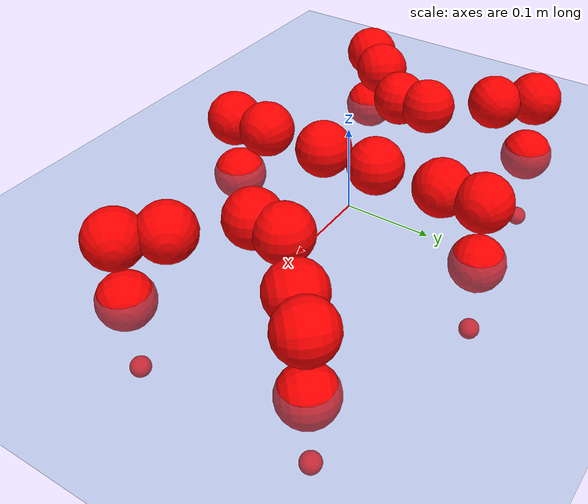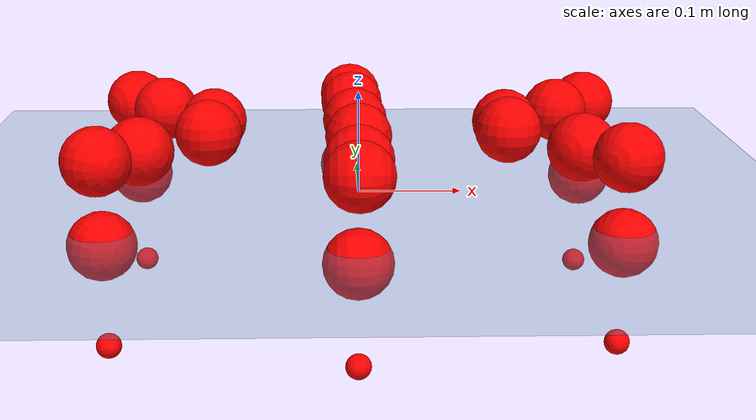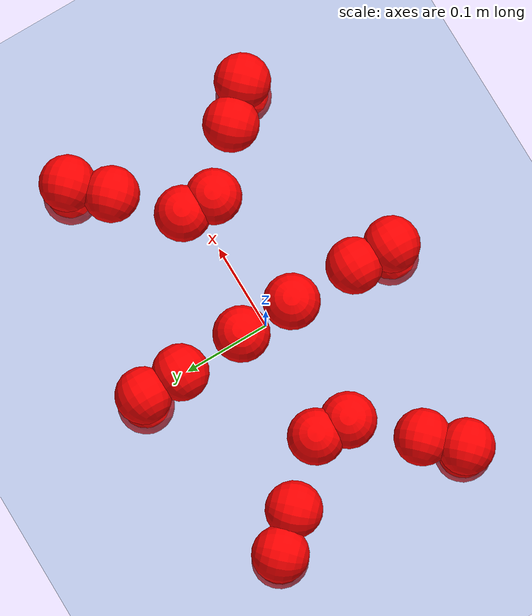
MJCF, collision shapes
<mujoco model="Golem">
  <compiler angle="radian" assetdir="assets" balanceinertia="true" inertiafromgeom="false"/>

  <option timestep="0.005" density="1.2" viscosity="2e-05"/>

  <size nkey="1"/>

  <visual>
    <quality shadowsize="8192"/>
    <map shadowclip="0.5"/>
  </visual>

  <default>
    <default class="/">
      <joint armature="0.01" damping="0.01" frictionloss="0.01"/>
      <geom contype="0" conaffinity="0" group="1" solref="-1000 -80"/>
      <site size="0.01 0.005 0.005" group="5"/>
      <general forcelimited="true" biastype="affine" gainprm="25" biasprm="0 -25 -0.5"/>
      <default class="visual">
        <geom type="mesh" group="2"/>
      </default>
      <default class="collision">
        <geom group="3"/>
      </default>
      <default class="foot">
        <geom size="0.01 0 0" condim="6" group="4" priority="1" solimp="0.015 1 0.01"/>
      </default>
      <default class="reward_collision_sphere">
        <geom group="5" rgba="1 0 0 1"/>
      </default>
    </default>
  </default>

  <asset>
    <texture type="skybox" colorspace="auto" name="//unnamed_texture_0" builtin="gradient" rgb1="0.95 0.95 0.95" rgb2="0.95 0.95 0.95" width="100" height="600"/>
    <texture type="2d" colorspace="auto" name="texplane" builtin="checker" rgb1="0.345 0.575 0.748" rgb2="0.345 0.575 0.748" markrgb="1 1 1" width="512" height="512"/>
    <material name="MatPlane" class="/" texture="texplane" texuniform="true" texrepeat="2 2" specular="0.9"/>
    <mesh name="body" class="/" file="body.stl" scale="0.001 0.001 0.001"/>
    <mesh name="coxa" class="/" file="coxa.stl" scale="0.001 0.001 0.001"/>
    <mesh name="femur" class="/" file="femur.stl" scale="0.001 0.001 0.001"/>
    <mesh name="tibia" class="/" file="tibia.stl" scale="0.001 0.001 0.001"/>
    <mesh name="tarsus" class="/" file="tarsus.stl" scale="0.001 0.001 0.001"/>
  </asset>

  <worldbody>
    <geom name="floor" class="/" size="100 100 0.125" type="plane" group="0" material="MatPlane"/>
    <light name="toplight_shadow" class="/" pos="0 0 5" dir="0.0990148 0.0990148 -0.990148" type="directional" ambient="0.04 0.04 0.04" diffuse="0.55 0.55 0.55" specular="0.12 0.12 0.12"/>
    <light name="toplight_fill" class="/" pos="0 0 5" dir="0.0990148 0.0990148 -0.990148" type="directional" castshadow="false" ambient="0.04 0.04 0.04" diffuse="0.3 0.3 0.3" specular="0.08 0.08 0.08"/>
    <body name="trunk" pos="0.000115658 -6.80369e-05 -0.000188741" quat="1 -0.000788379 -0.000218815 0.000245222">
      <inertial pos="-0.000333855 -0.000277959 -0.00364227" quat="1 0.000265197 -0.000270387 0.000427131" mass="1.86624" diaginertia="0.00616719 0.000187388 0.0107525"/>
      <joint name="//unnamed_joint_0" type="free"/>
      <geom name="//unnamed_geom_1" class="/" pos="0 0 0.0649855" quat="1 0 0 0" type="mesh" rgba="0.9 0.9 0.9 1" mesh="body"/>
      <site name="imu" class="/" pos="0.125175 0.00341057 0.101778" size="0.00791487"/>
      <camera name="track" class="/" pos="0 -0.902434 0" quat="0.707107 0.707107 0 0" mode="trackcom"/>
      <camera name="ego_camera" class="/" pos="0.11802 0 0.10154" quat="-0.5 -0.5 0.5 0.5"/>
      <body name="coxa_RR" pos="-0.162377 -0.0376837 0.0652978" quat="0.382475 0.000853256 -0.000160698 -0.923965">
        <inertial pos="-0.000368452 0.00026573 0.00102379" quat="0.999998 -2.28453e-07 -0.0019502 -0.000107329" mass="0.0995874" diaginertia="0.00619345 0.000187279 0.0108868"/>
        <joint name="coxa_joint_RR" class="/" pos="0 0 0" axis="-0.00170131 -0.00508083 -0.999986" range="-3.14407 3.11454" armature="0.00791755" damping="0.00544154" frictionloss="0.00766211"/>
        <geom name="//unnamed_geom_2" class="/" type="mesh" rgba="0.2 0.2 0.2 1" mesh="coxa"/>
        <geom name="//unnamed_geom_3" class="reward_collision_sphere" size="0.0316595" pos="-0.0272354 0 0"/>
        <body name="femur_RR" pos="0.0552683 0.00185279 -0.00128433" quat="0.500019 -0.500024 0.500012 0.499945">
          <inertial pos="-7.82284e-05 0.000141385 2.239e-05" quat="0.999999 -0.000292048 0.000963336 0.000604994" mass="0.0992899" diaginertia="0.00610776 0.000185476 0.0109052"/>
          <joint name="femur_joint_RR" class="/" pos="0 0 0" axis="-0.00304648 -0.0010164 -0.999995" range="-3.11696 3.13415" armature="0.00761815" damping="0.00136135" frictionloss="0.00816712"/>
          <geom name="//unnamed_geom_4" class="/" type="mesh" rgba="0.9 0.9 0.9 1" mesh="femur"/>
          <geom name="//unnamed_geom_5" class="reward_collision_sphere" size="0.0316595"/>
          <body name="tibia_RR" pos="-0.000606885 -0.0483373 0.00159783" quat="7.71997e-05 1 -4.37266e-05 4.57099e-05">
            <inertial pos="0.000360388 -0.000179454 0.00018683" quat="0.999999 -0.000366909 0.00144489 0.00010019" mass="0.099818" diaginertia="0.00622795 0.000186797 0.0107147"/>
            <joint name="tibia_joint_RR" class="/" pos="0 0 0" axis="0.000327868 -0.00514533 0.999987" range="-3.11362 3.13499" armature="0.00776754" damping="0" frictionloss="0.00774611"/>
            <geom name="//unnamed_geom_6" class="/" type="mesh" rgba="0.2 0.2 0.2 1" mesh="tibia"/>
            <geom name="//unnamed_geom_7" class="reward_collision_sphere" size="0.0316595"/>
            <body name="tarsus_RR" pos="0.0783551 0.00010342 -0.00120754" quat="1 0.000312176 -9.14548e-05 -0.000211997">
              <inertial pos="0.0556567 0.000434502 0.000105833" quat="0.499017 0.500116 0.501191 0.499673" mass="0.097767" diaginertia="0.00604501 0.000186702 0.0106112"/>
              <joint name="tarsus_joint_RR" class="/" pos="0 0 0" axis="-0.000179251 3.41448e-06 1" range="-3.11954 3.1295" armature="0.00809712" damping="0" frictionloss="0.00802006"/>
              <geom name="//unnamed_geom_8" class="/" type="mesh" rgba="0.9 0.9 0.9 1" mesh="tarsus"/>
              <geom name="foot_1" class="foot" size="0.00755947" pos="0.101679 0 0" quat="0 -0.707107 0 0.707107"/>
              <geom name="//unnamed_geom_10" class="reward_collision_sphere" size="0.0316595"/>
              <geom name="//unnamed_geom_11" class="reward_collision_sphere" size="0.0118723" pos="0.0975935 0 0"/>
              <site name="foot_1" class="foot" pos="0.101679 0 0" quat="0 -0.707107 0 0.707107" size="0.00791487"/>
            </body>
          </body>
        </body>
      </body>
      <body name="coxa_RM" pos="-0.000340545 -0.0601727 0.0648006" quat="0.70683 0.000271928 0.000260786 -0.707383">
        <inertial pos="-0.000545664 -0.000817278 0.000180635" quat="0.999999 -0.00145435 0.000160697 0.000297386" mass="0.0986991" diaginertia="0.00609866 0.00018838 0.0108997"/>
        <joint name="coxa_joint_RM" class="/" pos="0 0 0" axis="0.00325443 0.00548247 -0.99998" range="-3.14016 3.14856" armature="0.00851856" damping="0.00579643" frictionloss="0.00795509"/>
        <geom name="//unnamed_geom_12" class="/" type="mesh" rgba="0.2 0.2 0.2 1" mesh="coxa"/>
        <geom name="//unnamed_geom_13" class="reward_collision_sphere" size="0.0316595" pos="-0.0272354 0 0"/>
        <body name="femur_RM" pos="0.0516754 -0.000816064 -0.000794878" quat="0.49998 -0.500014 0.500016 0.49999">
          <inertial pos="-0.00046557 -0.000272291 0.000136921" quat="1 0.000432771 0.000730407 5.48409e-05" mass="0.0980547" diaginertia="0.00606226 0.000189437 0.0109328"/>
          <joint name="femur_joint_RM" class="/" pos="0 0 0" axis="-0.00309771 -0.00123176 -0.999994" range="-3.121 3.14424" armature="0.00779683" damping="0.000744682" frictionloss="0.00779979"/>
          <geom name="//unnamed_geom_14" class="/" type="mesh" rgba="0.9 0.9 0.9 1" mesh="femur"/>
          <geom name="//unnamed_geom_15" class="reward_collision_sphere" size="0.0316595"/>
          <body name="tibia_RM" pos="0.00121711 -0.0473814 -0.000561067" quat="-0.000181251 1 0.000319191 -3.86816e-06">
            <inertial pos="-0.000786874 -0.000732487 -0.000819314" quat="0.999994 -0.00180244 -0.00283942 0.000368566" mass="0.0987451" diaginertia="0.00622379 0.000186376 0.0108258"/>
            <joint name="tibia_joint_RM" class="/" pos="0 0 0" axis="-0.00150182 -0.000994197 0.999998" range="-3.13451 3.15706" armature="0.00829822" damping="0.000533279" frictionloss="0.00853743"/>
            <geom name="//unnamed_geom_16" class="/" type="mesh" rgba="0.2 0.2 0.2 1" mesh="tibia"/>
            <geom name="//unnamed_geom_17" class="reward_collision_sphere" size="0.0316595"/>
            <body name="tarsus_RM" pos="0.0787019 0.000886422 0.00133262" quat="1 2.49773e-05 -4.9234e-05 2.58258e-05">
              <inertial pos="0.0542331 0.00143789 0.000174837" quat="0.500686 0.500442 0.499015 0.499855" mass="0.0994291" diaginertia="0.0061002 0.000184935 0.010853"/>
              <joint name="tarsus_joint_RM" class="/" pos="0 0 0" axis="0.000338414 -0.000684229 1" range="-3.11296 3.1195" armature="0.00856586" damping="0.000704231" frictionloss="0.0078942"/>
              <geom name="//unnamed_geom_18" class="/" type="mesh" rgba="0.9 0.9 0.9 1" mesh="tarsus"/>
              <geom name="foot_2" class="foot" size="0.00830034" pos="0.101679 0 0" quat="0 -0.707107 0 0.707107"/>
              <geom name="//unnamed_geom_20" class="reward_collision_sphere" size="0.0316595"/>
              <geom name="//unnamed_geom_21" class="reward_collision_sphere" size="0.0118723" pos="0.0975935 0 0"/>
              <site name="foot_2" class="foot" pos="0.101679 0 0" quat="0 -0.707107 0 0.707107" size="0.00791487"/>
            </body>
          </body>
        </body>
      </body>
      <body name="coxa_RF" pos="0.161982 -0.0382996 0.066904" quat="0.923942 -8.32482e-05 -4.53236e-05 -0.382531">
        <inertial pos="0.000246861 -0.00206952 -0.000158727" quat="1 -0.000417083 -0.000284809 4.62235e-05" mass="0.100136" diaginertia="0.00617115 0.000187817 0.010824"/>
        <joint name="coxa_joint_RF" class="/" pos="0 0 0" axis="0.00197118 0.00419033 -0.999989" range="-3.11904 3.1614" armature="0.00815642" damping="0" frictionloss="0.00770805"/>
        <geom name="//unnamed_geom_22" class="/" type="mesh" rgba="0.2 0.2 0.2 1" mesh="coxa"/>
        <geom name="//unnamed_geom_23" class="reward_collision_sphere" size="0.0316595" pos="-0.0272354 0 0"/>
        <body name="femur_RF" pos="0.0561781 0.00135133 -0.00188719" quat="0.499801 -0.500317 0.500177 0.499704">
          <inertial pos="-4.87032e-05 -0.000331253 0.00120233" quat="0.999979 0.00222445 -0.00613303 0.000453919" mass="0.0994877" diaginertia="0.0062081 0.000183948 0.0107928"/>
          <joint name="femur_joint_RF" class="/" pos="0 0 0" axis="-0.00241805 -0.00250749 -0.999994" range="-3.14306 3.13729" armature="0.00807858" damping="0" frictionloss="0.0074935"/>
          <geom name="//unnamed_geom_24" class="/" type="mesh" rgba="0.9 0.9 0.9 1" mesh="femur"/>
          <geom name="//unnamed_geom_25" class="reward_collision_sphere" size="0.0316595"/>
          <body name="tibia_RF" pos="0.000256382 -0.049806 -0.000324178" quat="3.86314e-05 1 -3.57778e-05 -7.33996e-05">
            <inertial pos="0.000388848 -0.000499219 0.00086592" quat="0.999999 -0.000103161 -0.00120818 0.00080217" mass="0.0986179" diaginertia="0.00613189 0.000188343 0.0108527"/>
            <joint name="tibia_joint_RF" class="/" pos="0 0 0" axis="-0.00230988 0.000961424 0.999997" range="-3.13834 3.14131" armature="0.00817094" damping="0.00980712" frictionloss="0.00789601"/>
            <geom name="//unnamed_geom_26" class="/" type="mesh" rgba="0.2 0.2 0.2 1" mesh="tibia"/>
            <geom name="//unnamed_geom_27" class="reward_collision_sphere" size="0.0316595"/>
            <body name="tarsus_RF" pos="0.0798817 0.000560762 0.000445148" quat="1 -0.000147424 -0.00024706 0.000494498">
              <inertial pos="0.0532351 0.000248507 0.00160427" quat="0.500123 0.50004 0.499965 0.499872" mass="0.0985642" diaginertia="0.00615601 0.000183122 0.010637"/>
              <joint name="tarsus_joint_RF" class="/" pos="0 0 0" axis="-0.00488379 -0.00779508 0.999958" range="-3.11251 3.13161" armature="0.00794248" damping="0" frictionloss="0.00779471"/>
              <geom name="//unnamed_geom_28" class="/" type="mesh" rgba="0.9 0.9 0.9 1" mesh="tarsus"/>
              <geom name="foot_3" class="foot" size="0.00789327" pos="0.101679 0 0" quat="0 -0.707107 0 0.707107"/>
              <geom name="//unnamed_geom_30" class="reward_collision_sphere" size="0.0316595"/>
              <geom name="//unnamed_geom_31" class="reward_collision_sphere" size="0.0118723" pos="0.0975935 0 0"/>
              <site name="foot_3" class="foot" pos="0.101679 0 0" quat="0 -0.707107 0 0.707107" size="0.00791487"/>
            </body>
          </body>
        </body>
      </body>
      <body name="coxa_LR" pos="-0.160094 0.0399936 0.0674319" quat="0.382849 0.000350574 -0.000472841 0.923811">
        <inertial pos="0.00132611 -0.000601408 0.00157617" quat="1 4.57021e-05 0.000971782 -0.000108021" mass="0.0984251" diaginertia="0.00616595 0.000185562 0.0107088"/>
        <joint name="coxa_joint_LR" class="/" pos="0 0 0" axis="0.00364779 0.00298227 -0.999989" range="-3.14049 3.14511" armature="0.00826988" damping="0.00665716" frictionloss="0.00801537"/>
        <geom name="//unnamed_geom_32" class="/" type="mesh" rgba="0.2 0.2 0.2 1" mesh="coxa"/>
        <geom name="//unnamed_geom_33" class="reward_collision_sphere" size="0.0316595" pos="-0.0272354 0 0"/>
        <body name="femur_LR" pos="0.055057 -0.00398189 -0.00206461" quat="0.500141 -0.500333 0.499431 0.500095">
          <inertial pos="-0.00101035 -0.000573747 0.000115086" quat="0.999999 0.00106737 0.000499476 0.000722206" mass="0.0981543" diaginertia="0.00613341 0.000186436 0.0106156"/>
          <joint name="femur_joint_LR" class="/" pos="0 0 0" axis="-0.00308493 0.000345138 0.999995" range="-3.15713 3.17383" armature="0.00782133" damping="0.00842161" frictionloss="0.00854201"/>
          <geom name="//unnamed_geom_34" class="/" type="mesh" rgba="0.9 0.9 0.9 1" mesh="femur"/>
          <geom name="//unnamed_geom_35" class="reward_collision_sphere" size="0.0316595"/>
          <body name="tibia_LR" pos="0.000277208 -0.050296 -0.00240353" quat="-0.000269171 1 -3.98732e-05 0.000133475">
            <inertial pos="-0.000972449 0.000134383 5.32242e-05" quat="0.999998 -0.00019676 0.00179505 -0.000423227" mass="0.0998894" diaginertia="0.00614212 0.000186154 0.0107632"/>
            <joint name="tibia_joint_LR" class="/" pos="0 0 0" axis="0.000303655 -0.000129957 -1" stiffness="9.98782e-05" range="-3.14933 3.12191" armature="0.00737215" damping="0" frictionloss="0.0082519"/>
            <geom name="//unnamed_geom_36" class="/" type="mesh" rgba="0.2 0.2 0.2 1" mesh="tibia"/>
            <geom name="//unnamed_geom_37" class="reward_collision_sphere" size="0.0316595"/>
            <body name="tarsus_LR" pos="0.0797033 -0.000459712 0.000208596" quat="1 0.000149822 -0.000103794 -0.000111955">
              <inertial pos="0.0556679 0.00104965 0.000200588" quat="0.500641 0.500361 0.499166 0.499831" mass="0.0994998" diaginertia="0.00616253 0.000189307 0.0107574"/>
              <joint name="tarsus_joint_LR" class="/" pos="0 0 0" axis="0.000779829 -0.00170247 -0.999998" range="-3.11537 3.13853" armature="0.0078762" damping="0" frictionloss="0.00810568"/>
              <geom name="//unnamed_geom_38" class="/" type="mesh" rgba="0.9 0.9 0.9 1" mesh="tarsus"/>
              <geom name="foot_4" class="foot" size="0.00763677" pos="0.101679 0 0" quat="0.707107 0 -0.707107 0"/>
              <geom name="//unnamed_geom_40" class="reward_collision_sphere" size="0.0316595"/>
              <geom name="//unnamed_geom_41" class="reward_collision_sphere" size="0.0118723" pos="0.0975935 0 0"/>
              <site name="foot_4" class="foot" pos="0.101679 0 0" quat="0.707107 0 -0.707107 0" size="0.00791487"/>
            </body>
          </body>
        </body>
      </body>
      <body name="coxa_LM" pos="-0.00292519 0.0594688 0.0647755" quat="0.706521 -0.000472609 -0.00063096 0.707692">
        <inertial pos="0.00111572 2.36766e-05 0.000268885" quat="0.999997 0.000962539 0.00230216 3.99231e-05" mass="0.10236" diaginertia="0.00642494 0.000191376 0.0108997"/>
        <joint name="coxa_joint_LM" class="/" pos="0 0 0" axis="0.000555551 -0.000579612 -1" stiffness="0.00348836" range="-3.1471 3.13504" armature="0.00803104" damping="0.00610211" frictionloss="0.00802053"/>
        <geom name="//unnamed_geom_42" class="/" type="mesh" rgba="0.2 0.2 0.2 1" mesh="coxa"/>
        <geom name="//unnamed_geom_43" class="reward_collision_sphere" size="0.0316595" pos="-0.0272354 0 0"/>
        <body name="femur_LM" pos="0.0511275 0.00214189 0.00012799" quat="0.49988 -0.500151 0.499952 0.500017">
          <inertial pos="-0.000152064 0.000257309 -0.000288311" quat="0.999995 0.000425892 -0.00229926 0.0022492" mass="0.0974339" diaginertia="0.00609711 0.000182928 0.0105712"/>
          <joint name="femur_joint_LM" class="/" pos="0 0 0" axis="-0.000423184 -0.000245159 1" range="-3.14322 3.13137" armature="0.00824019" damping="0" frictionloss="0.00772105"/>
          <geom name="//unnamed_geom_44" class="/" type="mesh" rgba="0.9 0.9 0.9 1" mesh="femur"/>
          <geom name="//unnamed_geom_45" class="reward_collision_sphere" size="0.0316595"/>
          <body name="tibia_LM" pos="0.00110274 -0.0470986 0.000933135" quat="0.000225798 1 -0.000114342 2.12562e-05">
            <inertial pos="-0.00137461 -0.000243795 0.000238835" quat="1 0.000167018 0.000157439 2.63286e-05" mass="0.0996802" diaginertia="0.00614333 0.000186646 0.0108718"/>
            <joint name="tibia_joint_LM" class="/" pos="0 0 0" axis="-0.000869691 -0.000123913 -1" stiffness="0.000776856" range="-3.13974 3.14082" armature="0.00792551" damping="0" frictionloss="0.00821512"/>
            <geom name="//unnamed_geom_46" class="/" type="mesh" rgba="0.2 0.2 0.2 1" mesh="tibia"/>
            <geom name="//unnamed_geom_47" class="reward_collision_sphere" size="0.0316595"/>
            <body name="tarsus_LM" pos="0.0804368 0.000276775 -0.000955418" quat="1 1.65011e-05 -8.86953e-05 -8.06522e-05">
              <inertial pos="0.0553214 0.00017534 -3.18371e-05" quat="0.501566 0.499644 0.50061 0.498174" mass="0.100284" diaginertia="0.00623065 0.000188005 0.0109034"/>
              <joint name="tarsus_joint_LM" class="/" pos="0 0 0" axis="0.00029611 0.000475712 -1" stiffness="0.00138686" range="-3.14702 3.14009" armature="0.00789534" damping="0.00494596" frictionloss="0.00775398"/>
              <geom name="//unnamed_geom_48" class="/" type="mesh" rgba="0.9 0.9 0.9 1" mesh="tarsus"/>
              <geom name="foot_5" class="foot" size="0.00806521" pos="0.101679 0 0" quat="0.707107 0 -0.707107 0"/>
              <geom name="//unnamed_geom_50" class="reward_collision_sphere" size="0.0316595"/>
              <geom name="//unnamed_geom_51" class="reward_collision_sphere" size="0.0118723" pos="0.0975935 0 0"/>
              <site name="foot_5" class="foot" pos="0.101679 0 0" quat="0.707107 0 -0.707107 0" size="0.00791487"/>
            </body>
          </body>
        </body>
      </body>
      <body name="coxa_LF" pos="0.163323 0.0384257 0.065468" quat="0.923908 -1.03068e-05 0.00019574 0.382614">
        <inertial pos="-0.000663687 0.000262649 -0.000251266" quat="0.999999 -0.000758591 -0.000265436 0.000647518" mass="0.0985719" diaginertia="0.00616216 0.000185123 0.0107618"/>
        <joint name="coxa_joint_LF" class="/" pos="0 0 0" axis="0.00124655 0.00141196 -0.999998" range="-3.13338 3.15522" armature="0.00795264" damping="0" frictionloss="0.00757017"/>
        <geom name="//unnamed_geom_52" class="/" type="mesh" rgba="0.2 0.2 0.2 1" mesh="coxa"/>
        <geom name="//unnamed_geom_53" class="reward_collision_sphere" size="0.0316595" pos="-0.0272354 0 0"/>
        <body name="femur_LF" pos="0.0539394 -0.00211687 -0.00175985" quat="0.499841 -0.500006 0.500328 0.499825">
          <inertial pos="0.000362428 -0.000366247 -0.000611961" quat="0.999966 -0.00685504 -0.00200949 0.00403318" mass="0.0992204" diaginertia="0.00621255 0.00018448 0.0108737"/>
          <joint name="femur_joint_LF" class="/" pos="0 0 0" axis="0.000966231 0.000637364 0.999999" range="-3.14087 3.15747" armature="0.00778111" damping="0" frictionloss="0.0072194"/>
          <geom name="//unnamed_geom_54" class="/" type="mesh" rgba="0.9 0.9 0.9 1" mesh="femur"/>
          <geom name="//unnamed_geom_55" class="reward_collision_sphere" size="0.0316595"/>
          <body name="tibia_LF" pos="-9.55622e-05 -0.0496077 3.95399e-05" quat="-5.95385e-05 1 6.70999e-05 -7.43302e-05">
            <inertial pos="0.000286026 -0.000327623 -0.000200839" quat="0.99999 -0.00243139 0.00378479 0.000208278" mass="0.098495" diaginertia="0.0062066 0.000188892 0.0108941"/>
            <joint name="tibia_joint_LF" class="/" pos="0 0 0" axis="-0.000418049 -0.0010786 -0.999999" range="-3.17015 3.13968" armature="0.00757043" damping="0" frictionloss="0.00805472"/>
            <geom name="//unnamed_geom_56" class="/" type="mesh" rgba="0.2 0.2 0.2 1" mesh="tibia"/>
            <geom name="//unnamed_geom_57" class="reward_collision_sphere" size="0.0316595"/>
            <body name="tarsus_LF" pos="0.0801999 3.46099e-05 0.000319987" quat="1 -6.56248e-05 -0.000107968 -1.15829e-06">
              <inertial pos="0.0568412 0.000677008 0.00185864" quat="0.499403 0.499988 0.500289 0.50032" mass="0.100033" diaginertia="0.00618727 0.000189091 0.0109831"/>
              <joint name="tarsus_joint_LF" class="/" pos="0 0 0" axis="-0.00121358 -0.00129727 -0.999998" stiffness="0.0285754" range="-3.13601 3.12172" armature="0.00790348" damping="0.0257711" frictionloss="0.00812013"/>
              <geom name="//unnamed_geom_58" class="/" type="mesh" rgba="0.9 0.9 0.9 1" mesh="tarsus"/>
              <geom name="foot_6" class="foot" size="0.00794295" pos="0.101679 0 0" quat="0.707107 0 -0.707107 0"/>
              <geom name="//unnamed_geom_60" class="reward_collision_sphere" size="0.0316595"/>
              <geom name="//unnamed_geom_61" class="reward_collision_sphere" size="0.0118723" pos="0.0975935 0 0"/>
              <site name="foot_6" class="foot" pos="0.101679 0 0" quat="0.707107 0 -0.707107 0" size="0.00791487"/>
            </body>
          </body>
        </body>
      </body>
    </body>
  </worldbody>

  <contact>
    <pair class="/" geom1="floor" geom2="foot_1" name="//unnamed_contact_0"/>
    <pair class="/" geom1="floor" geom2="foot_2" name="//unnamed_contact_1"/>
    <pair class="/" geom1="floor" geom2="foot_3" name="//unnamed_contact_2"/>
    <pair class="/" geom1="floor" geom2="foot_4" name="//unnamed_contact_3"/>
    <pair class="/" geom1="floor" geom2="foot_5" name="//unnamed_contact_4"/>
    <pair class="/" geom1="floor" geom2="foot_6" name="//unnamed_contact_5"/>
  </contact>

  <actuator>
    <general name="coxa_joint_RR" class="/" joint="coxa_joint_RR" forcerange="-5.76004 5.76004" gainprm="18.2888" biasprm="0 -18.2888 -0.396643"/>
    <general name="femur_joint_RR" class="/" joint="femur_joint_RR" forcerange="-5.57158 5.57158" gainprm="18.2888" biasprm="0 -18.2888 -0.396643"/>
    <general name="tibia_joint_RR" class="/" joint="tibia_joint_RR" forcerange="-5.82153 5.82153" gainprm="18.2888" biasprm="0 -18.2888 -0.396643"/>
    <general name="tarsus_joint_RR" class="/" joint="tarsus_joint_RR" forcerange="-5.82632 5.82632" gainprm="18.2888" biasprm="0 -18.2888 -0.396643"/>
    <general name="coxa_joint_RM" class="/" joint="coxa_joint_RM" forcerange="-5.77348 5.77348" gainprm="18.2888" biasprm="0 -18.2888 -0.396643"/>
    <general name="femur_joint_RM" class="/" joint="femur_joint_RM" forcerange="-5.89343 5.89343" gainprm="18.2888" biasprm="0 -18.2888 -0.396643"/>
    <general name="tibia_joint_RM" class="/" joint="tibia_joint_RM" forcerange="-5.9882 5.9882" gainprm="18.2888" biasprm="0 -18.2888 -0.396643"/>
    <general name="tarsus_joint_RM" class="/" joint="tarsus_joint_RM" forcerange="-6.11485 6.11485" gainprm="18.2888" biasprm="0 -18.2888 -0.396643"/>
    <general name="coxa_joint_RF" class="/" joint="coxa_joint_RF" forcerange="-6.00074 6.00074" gainprm="18.2888" biasprm="0 -18.2888 -0.396643"/>
    <general name="femur_joint_RF" class="/" joint="femur_joint_RF" forcerange="-5.55164 5.55164" gainprm="18.2888" biasprm="0 -18.2888 -0.396643"/>
    <general name="tibia_joint_RF" class="/" joint="tibia_joint_RF" forcerange="-5.98599 5.98599" gainprm="18.2888" biasprm="0 -18.2888 -0.396643"/>
    <general name="tarsus_joint_RF" class="/" joint="tarsus_joint_RF" forcerange="-5.78163 5.78163" gainprm="18.2888" biasprm="0 -18.2888 -0.396643"/>
    <general name="coxa_joint_LR" class="/" joint="coxa_joint_LR" forcerange="-5.58063 5.58063" gainprm="18.2888" biasprm="0 -18.2888 -0.396643"/>
    <general name="femur_joint_LR" class="/" joint="femur_joint_LR" forcerange="-5.83328 5.83328" gainprm="18.2888" biasprm="0 -18.2888 -0.396643"/>
    <general name="tibia_joint_LR" class="/" joint="tibia_joint_LR" forcerange="-5.98801 5.98801" gainprm="18.2888" biasprm="0 -18.2888 -0.396643"/>
    <general name="tarsus_joint_LR" class="/" joint="tarsus_joint_LR" forcerange="-5.66688 5.66688" gainprm="18.2888" biasprm="0 -18.2888 -0.396643"/>
    <general name="coxa_joint_LM" class="/" joint="coxa_joint_LM" forcerange="-5.79186 5.79186" gainprm="18.2888" biasprm="0 -18.2888 -0.396643"/>
    <general name="femur_joint_LM" class="/" joint="femur_joint_LM" forcerange="-5.78577 5.78577" gainprm="18.2888" biasprm="0 -18.2888 -0.396643"/>
    <general name="tibia_joint_LM" class="/" joint="tibia_joint_LM" forcerange="-5.44987 5.44987" gainprm="18.2888" biasprm="0 -18.2888 -0.396643"/>
    <general name="tarsus_joint_LM" class="/" joint="tarsus_joint_LM" forcerange="-5.76517 5.76517" gainprm="18.2888" biasprm="0 -18.2888 -0.396643"/>
    <general name="coxa_joint_LF" class="/" joint="coxa_joint_LF" forcerange="-5.90225 5.90225" gainprm="18.2888" biasprm="0 -18.2888 -0.396643"/>
    <general name="femur_joint_LF" class="/" joint="femur_joint_LF" forcerange="-5.93542 5.93542" gainprm="18.2888" biasprm="0 -18.2888 -0.396643"/>
    <general name="tibia_joint_LF" class="/" joint="tibia_joint_LF" forcerange="-5.82835 5.82835" gainprm="18.2888" biasprm="0 -18.2888 -0.396643"/>
    <general name="tarsus_joint_LF" class="/" joint="tarsus_joint_LF" forcerange="-5.87146 5.87146" gainprm="18.2888" biasprm="0 -18.2888 -0.396643"/>
  </actuator>

  <sensor>
    <gyro site="imu" name="imu_angular_velocity"/>
    <velocimeter site="imu" name="imu_linear_velocity"/>
    <framelinvel objtype="site" objname="foot_1" name="foot_1_global_linear_velocity"/>
    <framelinvel objtype="site" objname="foot_2" name="foot_2_global_linear_velocity"/>
    <framelinvel objtype="site" objname="foot_3" name="foot_3_global_linear_velocity"/>
    <framelinvel objtype="site" objname="foot_4" name="foot_4_global_linear_velocity"/>
    <framelinvel objtype="site" objname="foot_5" name="foot_5_global_linear_velocity"/>
    <framelinvel objtype="site" objname="foot_6" name="foot_6_global_linear_velocity"/>
  </sensor>

  <keyframe>
    <key name="home" qpos="0 0 0.1457 1 0 0 0 0 0 0 0 0 0 0 0 0 0 0 0 0 0 0 0 0 0 0 0 0 0 0 0"/>
  </keyframe>
</mujoco>
